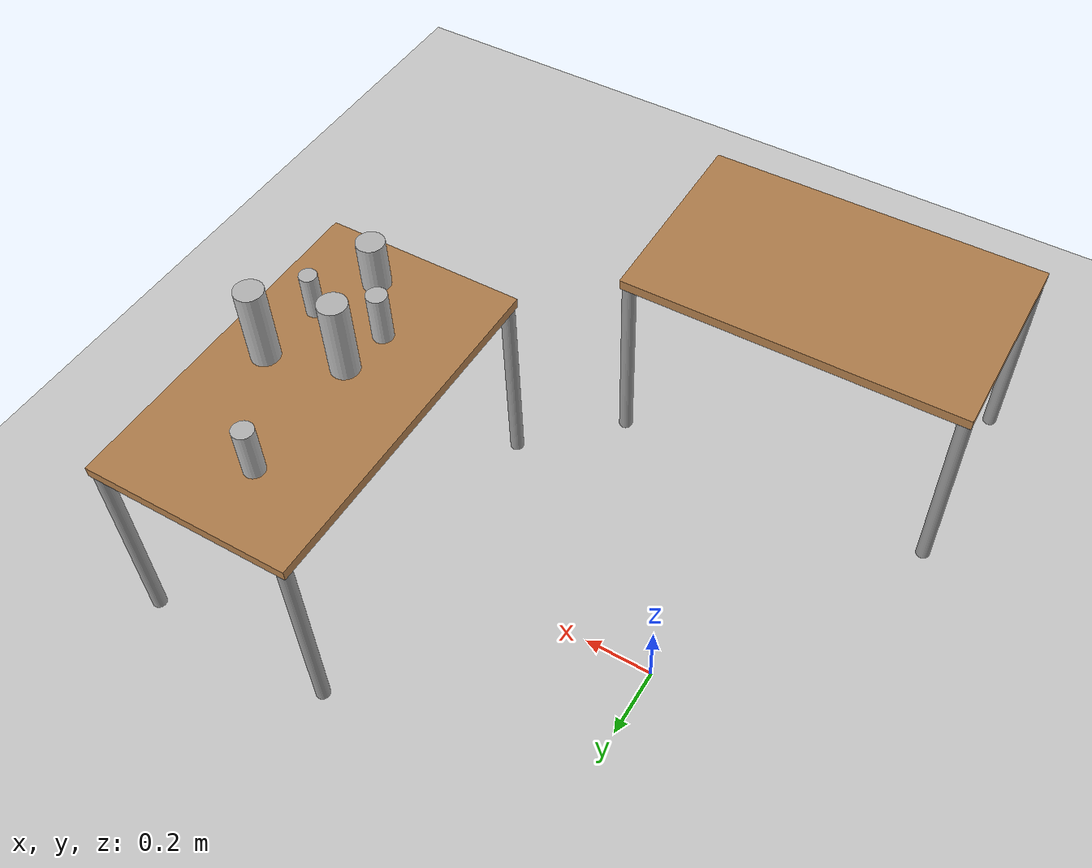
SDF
<sdf version="1.4">
 <world name="default">
  <physics type="ode">
   <gravity>0 0 -9.81</gravity>
   <ode>
    <solver><type>quick</type><iters>20</iters><sor>1</sor></solver>
    <constraints>
     <cfm>0</cfm>
     <erp>0.2</erp>
     <contact_max_correcting_vel>100</contact_max_correcting_vel>
     <contact_surface_layer>0</contact_surface_layer>
    </constraints>
   </ode>
   <real_time_update_rate>1000</real_time_update_rate>
   <max_step_size>0.001</max_step_size>
   <real_time_factor>1</real_time_factor>
  </physics>
  <light name="sun" type="directional">
   <pose>0 0 10 0 -0 0</pose>
   <diffuse>0.8 0.8 0.8 1</diffuse>
   <specular>0.2 0.2 0.2 1</specular>
   <attenuation>
    <range>1000</range>
    <constant>0.9</constant>
    <linear>0.01</linear>
    <quadratic>0.001</quadratic>
   </attenuation>
   <direction>-0.5 0.1 -0.9</direction>
  </light>
  <model name="ground_plane">
   <static>1</static>
   <link name="link">
    <collision name="collision">
     <geometry><plane><normal>0 0 1</normal><size>100 100</size></plane></geometry>
     <surface><friction><ode><mu>100</mu><mu2>50</mu2></ode></friction></surface>
    </collision>
    <visual name="visual">
     <cast_shadows>0</cast_shadows>
     <geometry><plane><normal>0 0 1</normal><size>100 100</size></plane></geometry>
     <material>
      <script><uri>file://media/materials/scripts/gazebo.material</uri><name>Gazebo/Grey</name></script>
     </material>
    </visual>
    <velocity_decay><linear>0</linear><angular>0</angular></velocity_decay>
   </link>
  </model>
  <scene><ambient>0.4 0.4 0.4 1</ambient><background>0.7 0.7 0.7 1</background><shadows>1</shadows></scene>
  <spherical_coordinates>
   <surface_model>EARTH_WGS84</surface_model>
   <latitude_deg>0</latitude_deg>
   <longitude_deg>0</longitude_deg>
   <elevation>0</elevation>
   <heading_deg>0</heading_deg>
  </spherical_coordinates>
  <model name="table">
   <static>1</static>
   <link name="link">
    <collision name="surface">
     <pose>0 0 0.6 0 -0 0</pose>
     <geometry><box><size>0.6 1 0.03</size></box></geometry>
    </collision>
    <visual name="visual1">
     <pose>0 0 0.6 0 -0 0</pose>
     <geometry><box><size>0.6 1 0.03</size></box></geometry>
     <material>
      <script><uri>file://media/materials/scripts/gazebo.material</uri><name>Gazebo/Wood</name></script>
     </material>
    </visual>
    <collision name="front_left_leg">
     <pose>0.28 0.48 0.3 0 -0 0</pose>
     <geometry><cylinder><radius>0.02</radius><length>0.6</length></cylinder></geometry>
    </collision>
    <visual name="front_left_leg">
     <pose>0.28 0.48 0.3 0 -0 0</pose>
     <geometry><cylinder><radius>0.02</radius><length>0.6</length></cylinder></geometry>
     <material>
      <script><uri>file://media/materials/scripts/gazebo.material</uri><name>Gazebo/Grey</name></script>
     </material>
    </visual>
    <collision name="front_right_leg">
     <pose>0.28 -0.48 0.3 0 -0 0</pose>
     <geometry><cylinder><radius>0.02</radius><length>0.6</length></cylinder></geometry>
    </collision>
    <visual name="front_right_leg">
     <pose>0.28 -0.48 0.3 0 -0 0</pose>
     <geometry><cylinder><radius>0.02</radius><length>0.6</length></cylinder></geometry>
     <material>
      <script><uri>file://media/materials/scripts/gazebo.material</uri><name>Gazebo/Grey</name></script>
     </material>
    </visual>
    <collision name="back_right_leg">
     <pose>-0.28 -0.48 0.3 0 -0 0</pose>
     <geometry><cylinder><radius>0.02</radius><length>0.6</length></cylinder></geometry>
    </collision>
    <visual name="back_right_leg">
     <pose>-0.28 -0.48 0.3 0 -0 0</pose>
     <geometry><cylinder><radius>0.02</radius><length>0.6</length></cylinder></geometry>
     <material>
      <script><uri>file://media/materials/scripts/gazebo.material</uri><name>Gazebo/Grey</name></script>
     </material>
    </visual>
    <collision name="back_left_leg">
     <pose>-0.28 0.48 0.3 0 -0 0</pose>
     <geometry><cylinder><radius>0.02</radius><length>0.6</length></cylinder></geometry>
    </collision>
    <visual name="back_left_leg">
     <pose>-0.28 0.48 0.3 0 -0 0</pose>
     <geometry><cylinder><radius>0.02</radius><length>0.6</length></cylinder></geometry>
     <material>
      <script><uri>file://media/materials/scripts/gazebo.material</uri><name>Gazebo/Grey</name></script>
     </material>
    </visual>
    <velocity_decay><linear>0</linear><angular>0</angular></velocity_decay>
   </link>
   <pose>1 0 0 0 -0 0</pose>
  </model>
  <model name="table_0">
   <static>1</static>
   <link name="link">
    <collision name="surface">
     <pose>0 0 0.6 0 -0 0</pose>
     <geometry><box><size>0.6 1 0.03</size></box></geometry>
    </collision>
    <visual name="visual1">
     <pose>0 0 0.6 0 -0 0</pose>
     <geometry><box><size>0.6 1 0.03</size></box></geometry>
     <material>
      <script><uri>file://media/materials/scripts/gazebo.material</uri><name>Gazebo/Wood</name></script>
     </material>
    </visual>
    <collision name="front_left_leg">
     <pose>0.28 0.48 0.3 0 -0 0</pose>
     <geometry><cylinder><radius>0.02</radius><length>0.6</length></cylinder></geometry>
    </collision>
    <visual name="front_left_leg">
     <pose>0.28 0.48 0.3 0 -0 0</pose>
     <geometry><cylinder><radius>0.02</radius><length>0.6</length></cylinder></geometry>
     <material>
      <script><uri>file://media/materials/scripts/gazebo.material</uri><name>Gazebo/Grey</name></script>
     </material>
    </visual>
    <collision name="front_right_leg">
     <pose>0.28 -0.48 0.3 0 -0 0</pose>
     <geometry><cylinder><radius>0.02</radius><length>0.6</length></cylinder></geometry>
    </collision>
    <visual name="front_right_leg">
     <pose>0.28 -0.48 0.3 0 -0 0</pose>
     <geometry><cylinder><radius>0.02</radius><length>0.6</length></cylinder></geometry>
     <material>
      <script><uri>file://media/materials/scripts/gazebo.material</uri><name>Gazebo/Grey</name></script>
     </material>
    </visual>
    <collision name="back_right_leg">
     <pose>-0.28 -0.48 0.3 0 -0 0</pose>
     <geometry><cylinder><radius>0.02</radius><length>0.6</length></cylinder></geometry>
    </collision>
    <visual name="back_right_leg">
     <pose>-0.28 -0.48 0.3 0 -0 0</pose>
     <geometry><cylinder><radius>0.02</radius><length>0.6</length></cylinder></geometry>
     <material>
      <script><uri>file://media/materials/scripts/gazebo.material</uri><name>Gazebo/Grey</name></script>
     </material>
    </visual>
    <collision name="back_left_leg">
     <pose>-0.28 0.48 0.3 0 -0 0</pose>
     <geometry><cylinder><radius>0.02</radius><length>0.6</length></cylinder></geometry>
    </collision>
    <visual name="back_left_leg">
     <pose>-0.28 0.48 0.3 0 -0 0</pose>
     <geometry><cylinder><radius>0.02</radius><length>0.6</length></cylinder></geometry>
     <material>
      <script><uri>file://media/materials/scripts/gazebo.material</uri><name>Gazebo/Grey</name></script>
     </material>
    </visual>
    <velocity_decay><linear>0</linear><angular>0</angular></velocity_decay>
   </link>
   <pose>0 -1 0 0 -0 1.57683</pose>
  </model>
  <model name="bifrutas_tropical_can">
   <static>0</static>
   <link name="link">
    <inertial>
     <mass>0.25</mass>
     <inertia><ixx>0</ixx><ixy>0</ixy><ixz>0</ixz><iyy>0</iyy><iyz>0</iyz><izz>0</izz></inertia>
    </inertial>
    <collision name="collision">
     <geometry><cylinder><radius>0.025</radius><length>0.132</length></cylinder></geometry>
    </collision>
    <visual name="visual">
     <geometry><cylinder><radius>0.025</radius><length>0.132</length></cylinder></geometry>
     <material>
      <script>
       <uri>model://bifrutas_tropical_can/material/scripts</uri>
       <uri>model://bifrutas_tropical_can/material/textures</uri>
       <name>Custom/bifrutas_tropical_can</name>
      </script>
     </material>
    </visual>
    <velocity_decay><linear>0</linear><angular>0</angular></velocity_decay>
   </link>
   <pose>1.13899 -0.196905 0.680998 -0.000268 0.00012 -4.7e-05</pose>
  </model>
  <model name="biscuits_pack">
   <static>0</static>
   <link name="link">
    <inertial>
     <mass>0.25</mass>
     <inertia><ixx>0</ixx><ixy>0</ixy><ixz>0</ixz><iyy>0</iyy><iyz>0</iyz><izz>0</izz></inertia>
    </inertial>
    <collision name="collision">
     <geometry><cylinder><radius>0.029</radius><length>0.15</length></cylinder></geometry>
    </collision>
    <visual name="visual">
     <geometry><cylinder><radius>0.029</radius><length>0.15</length></cylinder></geometry>
     <material>
      <script>
       <uri>model://biscuits_pack/material/scripts</uri>
       <uri>model://biscuits_pack/material/textures</uri>
       <name>Custom/biscuits_pack</name>
      </script>
     </material>
    </visual>
    <velocity_decay><linear>0</linear><angular>0</angular></velocity_decay>
   </link>
   <pose>0.931527 -0.213407 0.69 -1.6e-05 -0.000326 -0.000116</pose>
  </model>
  <model name="pringles">
   <static>0</static>
   <link name="link">
    <inertial>
     <mass>0.25</mass>
     <inertia><ixx>0</ixx><ixy>0</ixy><ixz>0</ixz><iyy>0</iyy><iyz>0</iyz><izz>0</izz></inertia>
    </inertial>
    <collision name="collision">
     <geometry><cylinder><radius>0.04</radius><length>0.235</length></cylinder></geometry>
    </collision>
    <visual name="visual">
     <geometry><cylinder><radius>0.04</radius><length>0.235</length></cylinder></geometry>
     <material>
      <script>
       <uri>model://pringles/material/scripts</uri>
       <uri>model://pringles/material/textures</uri>
       <name>Custom/pringles</name>
      </script>
     </material>
    </visual>
    <velocity_decay><linear>0</linear><angular>0</angular></velocity_decay>
   </link>
   <pose>1.15313 -0.006428 0.732509 -0.000222 1.9e-05 -0.000138</pose>
  </model>
  <model name="pringles2">
   <static>0</static>
   <link name="link">
    <inertial>
     <mass>0.25</mass>
     <inertia><ixx>0</ixx><ixy>0</ixy><ixz>0</ixz><iyy>0</iyy><iyz>0</iyz><izz>0</izz></inertia>
    </inertial>
    <collision name="collision">
     <pose>0 0 0.12 -3.14159 -0 0</pose>
     <geometry><cylinder><radius>0.04</radius><length>0.235</length></cylinder></geometry>
    </collision>
    <visual name="visual">
     <pose>0 0 0.12 -3.14159 -0 0</pose>
     <geometry><cylinder><radius>0.04</radius><length>0.235</length></cylinder></geometry>
     <material>
      <script>
       <uri>model://pringles2/material/scripts</uri>
       <uri>model://pringles2/material/textures</uri>
       <name>Custom/pringles2</name>
      </script>
     </material>
    </visual>
    <velocity_decay><linear>0</linear><angular>0</angular></velocity_decay>
   </link>
   <pose>0.948996 -0.072318 0.612509 -0.000224 -1.5e-05 0.000129</pose>
  </model>
  <model name="sprite">
   <static>0</static>
   <link name="link">
    <inertial>
     <mass>0.25</mass>
     <inertia><ixx>0</ixx><ixy>0</ixy><ixz>0</ixz><iyy>0</iyy><iyz>0</iyz><izz>0</izz></inertia>
    </inertial>
    <collision name="collision">
     <pose>0 0 0.075 -3.14159 -0 0</pose>
     <geometry><cylinder><radius>0.04</radius><length>0.15</length></cylinder></geometry>
    </collision>
    <visual name="visual">
     <pose>0 0 0.075 -3.14159 -0 0</pose>
     <geometry><cylinder><radius>0.04</radius><length>0.15</length></cylinder></geometry>
     <material>
      <script>
       <uri>model://sprite/material/scripts</uri>
       <uri>model://sprite/material/textures</uri>
       <name>Custom/sprite</name>
      </script>
     </material>
    </visual>
    <velocity_decay><linear>0</linear><angular>0</angular></velocity_decay>
   </link>
   <pose>1.05919 -0.362877 0.615008 4.2e-05 -0.000181 -0.000561</pose>
  </model>
  <model name="coke_can_slim_0">
   <static>0</static>
   <link name="link">
    <inertial>
     <mass>0.25</mass>
     <inertia>
      <ixx>7.1507e-05</ixx>
      <ixy>0</ixy>
      <ixz>0</ixz>
      <iyy>7.1507e-05</iyy>
      <iyz>0</iyz>
      <izz>1.4412e-05</izz>
     </inertia>
    </inertial>
    <collision name="collision">
     <geometry><cylinder><radius>0.029</radius><length>0.15</length></cylinder></geometry>
    </collision>
    <visual name="visual">
     <geometry><cylinder><radius>0.029</radius><length>0.15</length></cylinder></geometry>
     <material>
      <script>
       <uri>model://coke_can_slim/material/scripts</uri>
       <uri>model://coke_can_slim/material/textures</uri>
       <name>Custom/coke_can_slim</name>
      </script>
     </material>
    </visual>
    <velocity_decay><linear>0</linear><angular>0</angular></velocity_decay>
   </link>
   <pose>0.94355 0.298786 0.689999 5e-06 2e-05 0.001392</pose>
  </model>
 </world>
</sdf>
